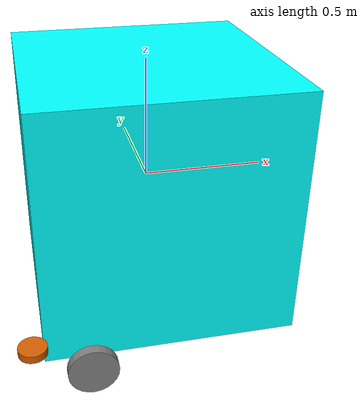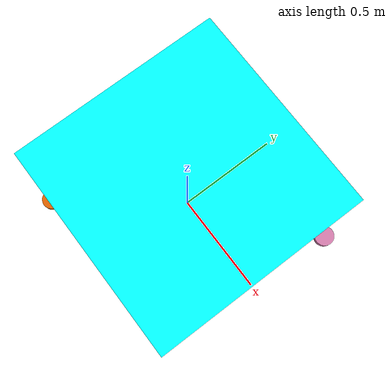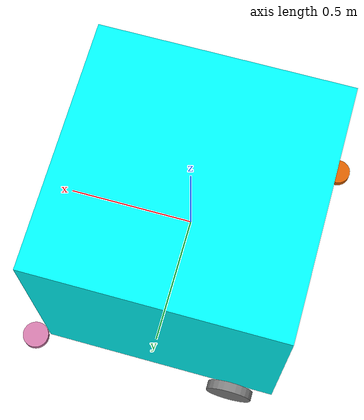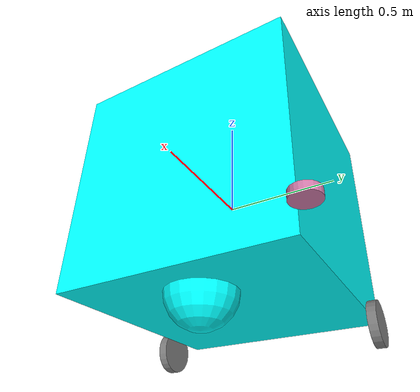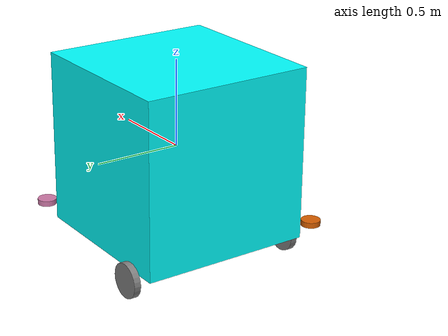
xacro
<?xml version="1.0"?>
<robot name="t32" xmlns:xacro="http://ros.org/wiki/xacro">

<xacro:include filename="gazebo_control.xacro"/>
<xacro:include filename="inertial_macros.urdf.xacro"/>

<xacro:property name="base_width" value="1.0"/>
<xacro:property name="base_length" value="1.0"/>
<xacro:property name="base_height" value="1.0"/>

<xacro:property name="wheel_radius" value="0.1"/>
<xacro:property name="wheel_width" value="0.04"/>
<xacro:property name="wheel_ygap" value="0.025"/>
<xacro:property name="wheel_zoff" value="0.55"/>
<xacro:property name="wheel_xoff" value="0.32"/>

<xacro:property name="caster_xoff" value="0.24"/>

<!-- Robot Base -->
<link name="base_link">
    <visual>
        <geometry>
            <box size="${base_length} ${base_width} ${base_height}"/>
        </geometry>
        <material name="Cyan">
            <color rgba="0 1.0 1.0 1.0"/>
        </material>
    </visual>
        <collision>
            <origin xyz="0.0 0 0.0"/>
            <geometry>
                <box size="${base_length} ${base_width} ${base_height}"/>
            </geometry>
        </collision>
        <xacro:inertial_box mass="0.5" x="${base_length}" y="${base_width}" z="${base_height}">
            <origin xyz="0.0 0 0.0"/>
        </xacro:inertial_box>

</link>
<gazebo reference="base_link">
        <material>Gazebo/White</material>
</gazebo>
<!-- Robot Footprint -->
<link name="base_footprint"/>

<joint name="base_joint" type="fixed">
    <parent link="base_link"/>
    <child link="base_footprint"/>
    <origin xyz="0.0 0.0 ${-(wheel_radius+wheel_zoff)}" rpy="0 0 0"/>
</joint>

<!-- Wheels -->
<xacro:macro name="wheel" params="prefix x_reflect y_reflect">
    <link name="${prefix}_link">
        <visual>
            <origin xyz="0 0 0" rpy="${pi/2} 0 0"/>
            <geometry>
                <cylinder radius="${wheel_radius}" length="${wheel_width}"/>
            </geometry>
            <material name="Gray">
                <color rgba="0.5 0.5 0.5 1.0"/>
            </material>
        </visual>
        <collision>
            <origin xyz="0 0 0" rpy="${pi/2} 0 0"/>
            <geometry>
                <cylinder radius="${wheel_radius}" length="${wheel_width}"/>
            </geometry>
        </collision>

        <xacro:inertial_cylinder mass="0.1" length="${wheel_width}" radius="${wheel_radius}">
            <origin xyz="0 0 0" rpy="${pi/2} 0 0"/>
        </xacro:inertial_cylinder>
    </link>
    <joint name="${prefix}_joint" type="continuous">
        <parent link="base_link"/>
        <child link="${prefix}_link"/>
        <origin xyz="${x_reflect*wheel_xoff} ${y_reflect*(base_width/2+wheel_ygap)} ${-wheel_zoff}" rpy="0 0 0"/>
        <axis xyz="0 1 0"/>
    </joint>
</xacro:macro>

<xacro:wheel prefix="wheel_left" x_reflect="-1" y_reflect="1"/>
<xacro:wheel prefix="wheel_right" x_reflect="-1" y_reflect="-1"/>

<!-- Caster wheel -->
<link name="front_caster">
    <visual>
        <geometry>
            <sphere radius="${(wheel_radius+wheel_zoff - (base_height/2))}"/>
        </geometry>
        <material name="Cyan">
            <color rgba="0 1.0 1.0 1.0"/>
        </material>
    </visual>
    <collision>
        <geometry>
            <sphere radius="${(wheel_radius+wheel_zoff - (base_height/2))}"/>
        </geometry>
    </collision>
    <xacro:inertial_sphere mass="0.1" radius="${(wheel_radius+wheel_zoff - (base_height/2))}">
        <origin xyz="0 0 0"/>
    </xacro:inertial_sphere>
</link>

<joint name="caster_joint" type="fixed">
    <parent link="base_link"/>
    <child link="front_caster"/>
    <origin xyz="${caster_xoff} 0.0 ${-(base_height/2)}" rpy="0 0 0"/>
</joint>

<gazebo reference="front_caster">
    <mu1 value="0.001"/>
    <mu2 value="0.001"/>
</gazebo>

<!-- 2D scan -->
<xacro:macro name="lidar" params="prefix x y z R P Y">
    <link name="${prefix}_link">
        <visual>
            <origin xyz="0 0 0" rpy="0 0 0"/>
            <geometry>
                <cylinder length="0.0315" radius="0.055"/>
            </geometry>
            <material name="dark"/>
        </visual>

        <collision>
            <origin xyz="0 0 0" rpy="0 0 0"/>
            <geometry>
                <cylinder length="0.0315" radius="0.055"/>
            </geometry>
        </collision>

        <xacro:inertial_sphere mass="0.114" radius="0.055">
            <origin xyz="0 0 0"/>
        </xacro:inertial_sphere>
    </link>

    <joint name="${prefix}_joint"  type="fixed">
        <parent link="base_link"/>
        <child link="${prefix}_link"/>
        <origin xyz="${x} ${y} ${z}" rpy="${R} ${P} ${Y}"/>
        <axis xyz="0 0 1"/>
    </joint>

</xacro:macro>

<xacro:lidar prefix="scan1" x="-0.54" y="-0.54" z="-0.4" R="0.0" P="0.0" Y="-2.356194" />
<xacro:lidar prefix="scan2" x="0.54" y="0.54" z="-0.4" R="0.0" P="0.0" Y="0.785398"/>

<!-- scan gazebo -->
<gazebo reference="scan1_link">
    <material value="Gazebo/FlatBlack"/>
    <sensor name="scan1" type="ray">
        <always_on>true</always_on>
        <visualize>true</visualize>
        <pose>0 0 0 0 0 0</pose>
        <update_rate>10</update_rate>
        <ray>
        <scan>
            <horizontal>
            <samples>270</samples>
                <resolution>1.000000</resolution>
                <min_angle>-2.35619</min_angle>
                <max_angle>2.35619</max_angle>
            </horizontal>
        </scan>
        <noise>
                <type>gaussian</type>
                <mean>0.0</mean>
                <stddev>0.01</stddev>
        </noise>
        <range>
            <min>0.120000</min>
            <max>15</max>
            <resolution>0.015000</resolution>
        </range>

        </ray>
        <plugin name="laser1" filename="libgazebo_ros_ray_sensor.so">
        <ros>
            <remapping>~/out:=scan_1</remapping>
        </ros>
        <output_type>sensor_msgs/LaserScan</output_type>
        <frame_name>scan1_link</frame_name>
        </plugin>
    </sensor>
</gazebo>

<gazebo reference="scan2_link">
    <material value="Gazebo/FlatBlack"/>
    <sensor name="scan2" type="ray">
        <always_on>true</always_on>
        <visualize>true</visualize>
        <pose>0 0 0 0 0 0</pose>
        <update_rate>10</update_rate>
        <ray>
        <scan>
            <horizontal>
            <samples>270</samples>
            <resolution>1.000000</resolution>
            <min_angle>-2.35619</min_angle>
            <max_angle>2.35619</max_angle>
            </horizontal>
        </scan>
        <noise>
                <type>gaussian</type>
                <mean>0.0</mean>
                <stddev>0.01</stddev>
        </noise>
        <range>
            <min>0.120000</min>
            <max>15</max>
            <resolution>0.015000</resolution>
        </range>

        </ray>
        <plugin name="laser2" filename="libgazebo_ros_ray_sensor.so">
        <ros>
            <remapping>~/out:=scan_2</remapping>
        </ros>
        <output_type>sensor_msgs/LaserScan</output_type>
        <frame_name>scan2_link</frame_name>
        </plugin>
    </sensor>
</gazebo>
    <link name="imu_link">

    </link>

    <joint name="imu_joint" type="fixed">
        <parent link="base_link"/>
        <child link="imu_link"/>
        <origin xyz="-0.032 0 0.068 " rpy="0 0 0"/>
        <axis xyz="0 0 1"/>
    </joint>

      <gazebo reference="imu_link">
        <sensor name="tb3_imu" type="imu">
                    <always_on>true</always_on>
                    <update_rate>50</update_rate>
                    <imu>
                    <angular_velocity>
                        <x>
                        <noise type="gaussian">
                            <mean>0.0</mean>
                            <stddev>2e-4</stddev>
                        </noise>
                        </x>
                        <y>
                        <noise type="gaussian">
                            <mean>0.0</mean>
                            <stddev>2e-4</stddev>
                        </noise>
                        </y>
                        <z>
                        <noise type="gaussian">
                            <mean>0.0</mean>
                            <stddev>2e-4</stddev>
                        </noise>
                        </z>
                    </angular_velocity>
                    <linear_acceleration>
                        <x>
                        <noise type="gaussian">
                            <mean>0.0</mean>
                            <stddev>1.7e-2</stddev>
                        </noise>
                        </x>
                        <y>
                        <noise type="gaussian">
                            <mean>0.0</mean>
                            <stddev>1.7e-2</stddev>
                        </noise>
                        </y>
                        <z>
                        <noise type="gaussian">
                            <mean>0.0</mean>
                            <stddev>1.7e-2</stddev>
                        </noise>
                        </z>
                    </linear_acceleration>
                    </imu>
                    <plugin name="turtlebot3_imu" filename="libgazebo_ros_imu_sensor.so">
                    <ros>
                        <remapping>~/out:=imu_before</remapping>
                    </ros>
                    <frame_name>imu_link</frame_name>
                    </plugin>
            </sensor>
    </gazebo>
</robot>
